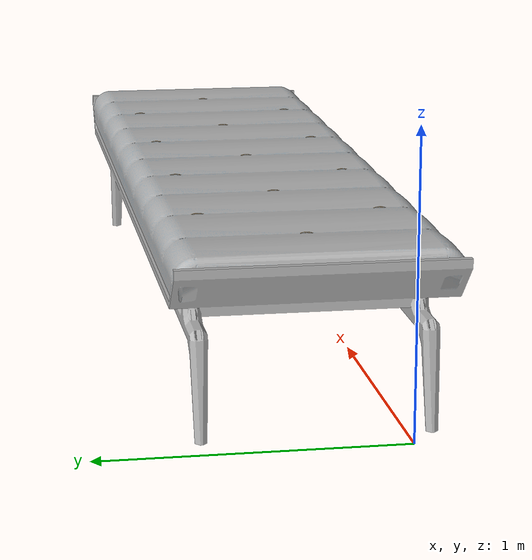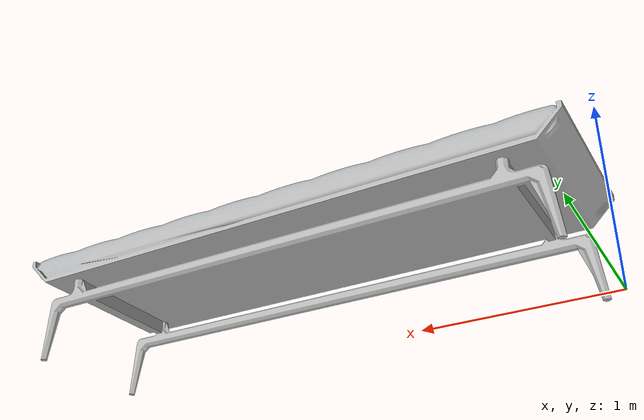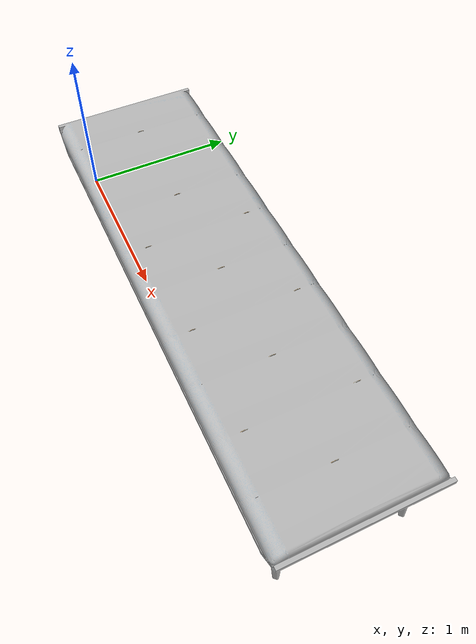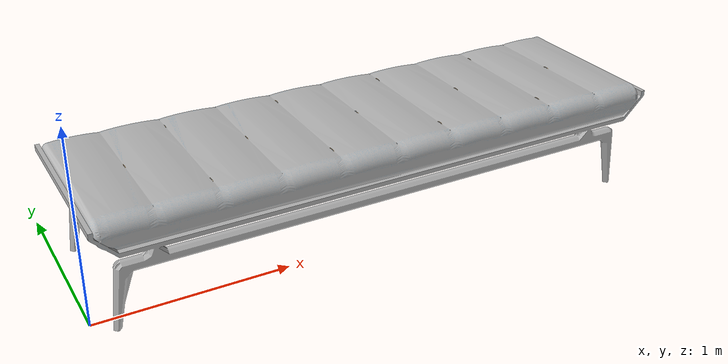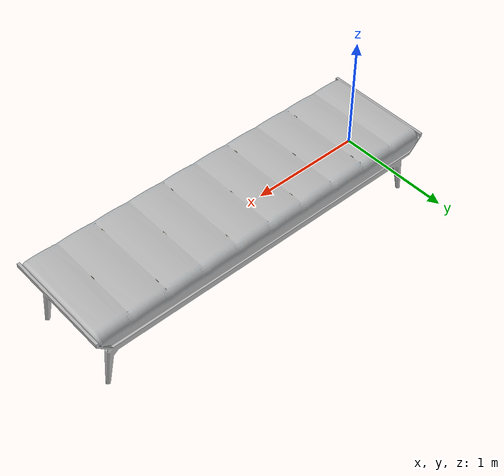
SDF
<?xml version='1.0'?>
<sdf version='1.6'>
  <model name='bench_1'>
    <link name='link_36'>
      <pose frame=''>0.007975 -0.173271 0 0 -0 0</pose>
       <visual name='visual'>
        <pose frame=''>0 0 0 0 -0 0</pose>
        <geometry>
          <mesh>
            <uri>model://bench_1/meshes/bench1.dae</uri>
            <scale>0.06 0.06 0.06</scale>
          </mesh>
        </geometry>

        <cast_shadows>1</cast_shadows>
        <transparency>0</transparency>
      </visual>
      <collision name='collision'>
        <laser_retro>0</laser_retro>
        <max_contacts>10</max_contacts>
        <pose frame=''>0 0 0 0 -0 0</pose>
        <geometry>
          <mesh>
            <uri>model://bench_1/meshes/bench1.dae</uri>
            <scale>0.06 0.06 0.06</scale>
          </mesh>
        </geometry>
       </collision>
    </link>
    <static>1</static>
    <allow_auto_disable>1</allow_auto_disable>
  </model>
</sdf>
